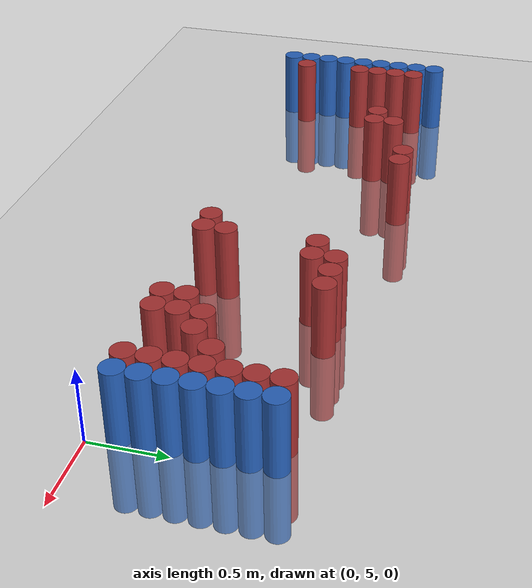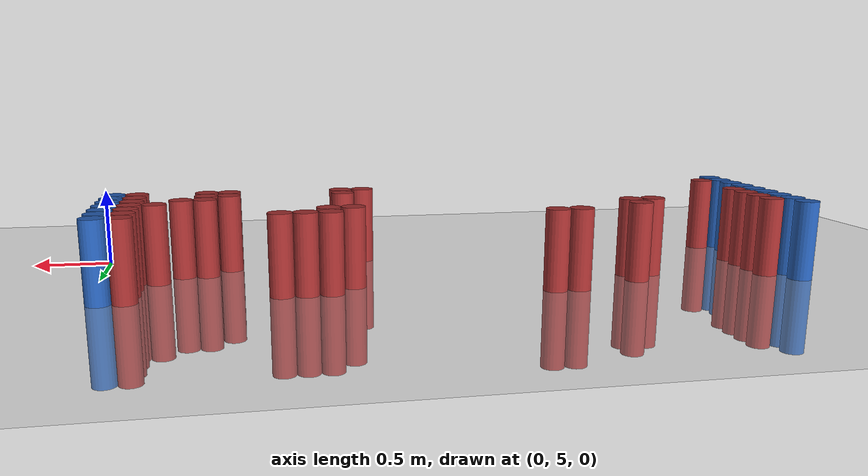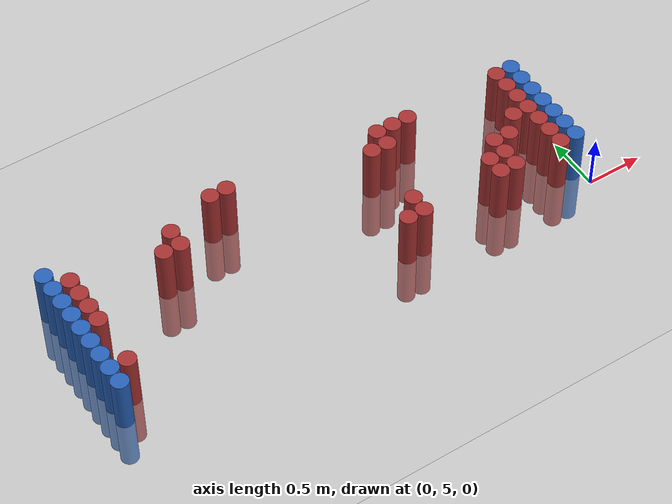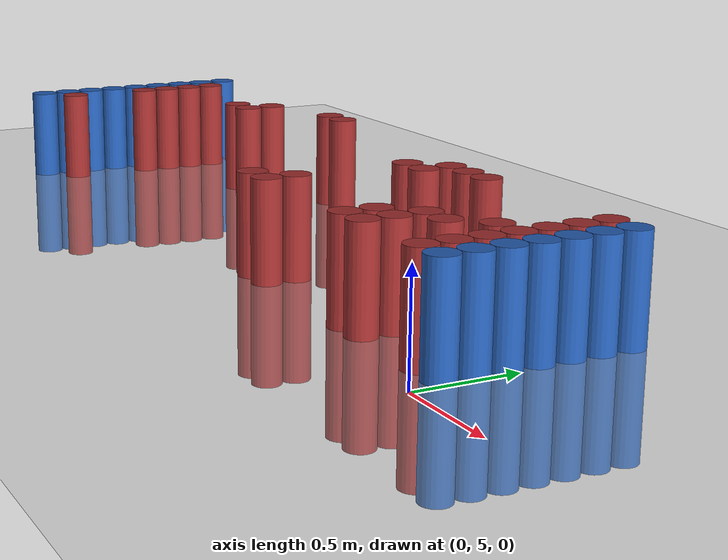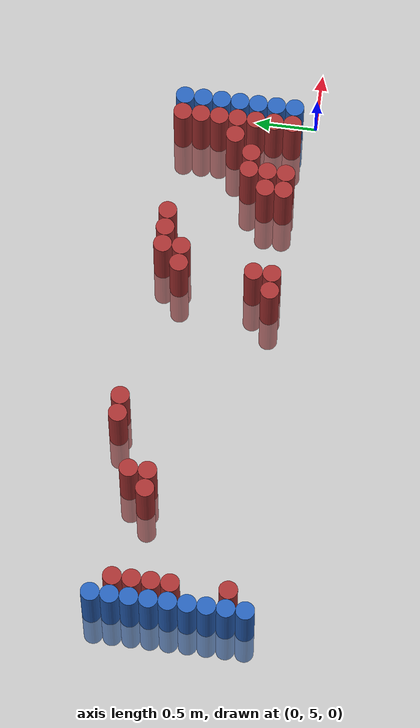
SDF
<sdf version="1.6">
 <world name="default">
  <model name="ground_plane">
   <static>1</static>
   <link name="link">
    <collision name="collision">
     <geometry><plane><normal>0 0 1</normal><size>100 100</size></plane></geometry>
     <surface><friction><ode><mu>100</mu><mu2>50</mu2></ode></friction></surface>
    </collision>
    <visual name="visual">
     <cast_shadows>0</cast_shadows>
     <geometry><plane><normal>0 0 1</normal><size>100 100</size></plane></geometry>
     <material>
      <script><uri>file://media/materials/scripts/gazebo.material</uri><name>Gazebo/Grey</name></script>
     </material>
    </visual>
   </link>
  </model>
  <model name="unit_cylinder_95">
   <static>1</static>
   <pose>-4.425000 5.025000 0.000000 0.000000 0.000000 0.000000</pose>
   <link name="link">
    <inertial>
     <mass>1</mass>
     <inertia><ixx>0.145833</ixx><ixy>0</ixy><ixz>0</ixz><iyy>0.145833</iyy><iyz>0</iyz><izz>0.125</izz></inertia>
    </inertial>
    <collision name="collision">
     <geometry><cylinder><radius>0.075000</radius><length>1</length></cylinder></geometry>
    </collision>
    <visual name="visual">
     <geometry><cylinder><radius>0.075000</radius><length>1</length></cylinder></geometry>
     <material>
      <ambient>0.152000 0.379000 0.720000 1</ambient>
      <diffuse>0.152000 0.379000 0.720000 1</diffuse>
     </material>
     <material>
      <script><name>Gazebo/Grey</name><uri>file://media/materials/scripts/gazebo.material</uri></script>
     </material>
    </visual>
   </link>
  </model>
  <model name="unit_cylinder_96">
   <static>1</static>
   <pose>-4.425000 5.175000 0.000000 0.000000 0.000000 0.000000</pose>
   <link name="link">
    <inertial>
     <mass>1</mass>
     <inertia><ixx>0.145833</ixx><ixy>0</ixy><ixz>0</ixz><iyy>0.145833</iyy><iyz>0</iyz><izz>0.125</izz></inertia>
    </inertial>
    <collision name="collision">
     <geometry><cylinder><radius>0.075000</radius><length>1</length></cylinder></geometry>
    </collision>
    <visual name="visual">
     <geometry><cylinder><radius>0.075000</radius><length>1</length></cylinder></geometry>
     <material>
      <ambient>0.152000 0.379000 0.720000 1</ambient>
      <diffuse>0.152000 0.379000 0.720000 1</diffuse>
     </material>
     <material>
      <script><name>Gazebo/Grey</name><uri>file://media/materials/scripts/gazebo.material</uri></script>
     </material>
    </visual>
   </link>
  </model>
  <model name="unit_cylinder_97">
   <static>1</static>
   <pose>-4.425000 5.325000 0.000000 0.000000 0.000000 0.000000</pose>
   <link name="link">
    <inertial>
     <mass>1</mass>
     <inertia><ixx>0.145833</ixx><ixy>0</ixy><ixz>0</ixz><iyy>0.145833</iyy><iyz>0</iyz><izz>0.125</izz></inertia>
    </inertial>
    <collision name="collision">
     <geometry><cylinder><radius>0.075000</radius><length>1</length></cylinder></geometry>
    </collision>
    <visual name="visual">
     <geometry><cylinder><radius>0.075000</radius><length>1</length></cylinder></geometry>
     <material>
      <ambient>0.152000 0.379000 0.720000 1</ambient>
      <diffuse>0.152000 0.379000 0.720000 1</diffuse>
     </material>
     <material>
      <script><name>Gazebo/Grey</name><uri>file://media/materials/scripts/gazebo.material</uri></script>
     </material>
    </visual>
   </link>
  </model>
  <model name="unit_cylinder_98">
   <static>1</static>
   <pose>-4.425000 5.475000 0.000000 0.000000 0.000000 0.000000</pose>
   <link name="link">
    <inertial>
     <mass>1</mass>
     <inertia><ixx>0.145833</ixx><ixy>0</ixy><ixz>0</ixz><iyy>0.145833</iyy><iyz>0</iyz><izz>0.125</izz></inertia>
    </inertial>
    <collision name="collision">
     <geometry><cylinder><radius>0.075000</radius><length>1</length></cylinder></geometry>
    </collision>
    <visual name="visual">
     <geometry><cylinder><radius>0.075000</radius><length>1</length></cylinder></geometry>
     <material>
      <ambient>0.152000 0.379000 0.720000 1</ambient>
      <diffuse>0.152000 0.379000 0.720000 1</diffuse>
     </material>
     <material>
      <script><name>Gazebo/Grey</name><uri>file://media/materials/scripts/gazebo.material</uri></script>
     </material>
    </visual>
   </link>
  </model>
  <model name="unit_cylinder_99">
   <static>1</static>
   <pose>-4.425000 5.625000 0.000000 0.000000 0.000000 0.000000</pose>
   <link name="link">
    <inertial>
     <mass>1</mass>
     <inertia><ixx>0.145833</ixx><ixy>0</ixy><ixz>0</ixz><iyy>0.145833</iyy><iyz>0</iyz><izz>0.125</izz></inertia>
    </inertial>
    <collision name="collision">
     <geometry><cylinder><radius>0.075000</radius><length>1</length></cylinder></geometry>
    </collision>
    <visual name="visual">
     <geometry><cylinder><radius>0.075000</radius><length>1</length></cylinder></geometry>
     <material>
      <ambient>0.152000 0.379000 0.720000 1</ambient>
      <diffuse>0.152000 0.379000 0.720000 1</diffuse>
     </material>
     <material>
      <script><name>Gazebo/Grey</name><uri>file://media/materials/scripts/gazebo.material</uri></script>
     </material>
    </visual>
   </link>
  </model>
  <model name="unit_cylinder_100">
   <static>1</static>
   <pose>-4.425000 5.775000 0.000000 0.000000 0.000000 0.000000</pose>
   <link name="link">
    <inertial>
     <mass>1</mass>
     <inertia><ixx>0.145833</ixx><ixy>0</ixy><ixz>0</ixz><iyy>0.145833</iyy><iyz>0</iyz><izz>0.125</izz></inertia>
    </inertial>
    <collision name="collision">
     <geometry><cylinder><radius>0.075000</radius><length>1</length></cylinder></geometry>
    </collision>
    <visual name="visual">
     <geometry><cylinder><radius>0.075000</radius><length>1</length></cylinder></geometry>
     <material>
      <ambient>0.152000 0.379000 0.720000 1</ambient>
      <diffuse>0.152000 0.379000 0.720000 1</diffuse>
     </material>
     <material>
      <script><name>Gazebo/Grey</name><uri>file://media/materials/scripts/gazebo.material</uri></script>
     </material>
    </visual>
   </link>
  </model>
  <model name="unit_cylinder_101">
   <static>1</static>
   <pose>-4.425000 5.925000 0.000000 0.000000 0.000000 0.000000</pose>
   <link name="link">
    <inertial>
     <mass>1</mass>
     <inertia><ixx>0.145833</ixx><ixy>0</ixy><ixz>0</ixz><iyy>0.145833</iyy><iyz>0</iyz><izz>0.125</izz></inertia>
    </inertial>
    <collision name="collision">
     <geometry><cylinder><radius>0.075000</radius><length>1</length></cylinder></geometry>
    </collision>
    <visual name="visual">
     <geometry><cylinder><radius>0.075000</radius><length>1</length></cylinder></geometry>
     <material>
      <ambient>0.152000 0.379000 0.720000 1</ambient>
      <diffuse>0.152000 0.379000 0.720000 1</diffuse>
     </material>
     <material>
      <script><name>Gazebo/Grey</name><uri>file://media/materials/scripts/gazebo.material</uri></script>
     </material>
    </visual>
   </link>
  </model>
  <model name="unit_cylinder_102">
   <static>1</static>
   <pose>-4.425000 6.075000 0.000000 0.000000 0.000000 0.000000</pose>
   <link name="link">
    <inertial>
     <mass>1</mass>
     <inertia><ixx>0.145833</ixx><ixy>0</ixy><ixz>0</ixz><iyy>0.145833</iyy><iyz>0</iyz><izz>0.125</izz></inertia>
    </inertial>
    <collision name="collision">
     <geometry><cylinder><radius>0.075000</radius><length>1</length></cylinder></geometry>
    </collision>
    <visual name="visual">
     <geometry><cylinder><radius>0.075000</radius><length>1</length></cylinder></geometry>
     <material>
      <ambient>0.152000 0.379000 0.720000 1</ambient>
      <diffuse>0.152000 0.379000 0.720000 1</diffuse>
     </material>
     <material>
      <script><name>Gazebo/Grey</name><uri>file://media/materials/scripts/gazebo.material</uri></script>
     </material>
    </visual>
   </link>
  </model>
  <model name="unit_cylinder_103">
   <static>1</static>
   <pose>-4.425000 6.225000 0.000000 0.000000 0.000000 0.000000</pose>
   <link name="link">
    <inertial>
     <mass>1</mass>
     <inertia><ixx>0.145833</ixx><ixy>0</ixy><ixz>0</ixz><iyy>0.145833</iyy><iyz>0</iyz><izz>0.125</izz></inertia>
    </inertial>
    <collision name="collision">
     <geometry><cylinder><radius>0.075000</radius><length>1</length></cylinder></geometry>
    </collision>
    <visual name="visual">
     <geometry><cylinder><radius>0.075000</radius><length>1</length></cylinder></geometry>
     <material>
      <ambient>0.152000 0.379000 0.720000 1</ambient>
      <diffuse>0.152000 0.379000 0.720000 1</diffuse>
     </material>
     <material>
      <script><name>Gazebo/Grey</name><uri>file://media/materials/scripts/gazebo.material</uri></script>
     </material>
    </visual>
   </link>
  </model>
  <model name="unit_cylinder_126">
   <static>1</static>
   <pose>-4.275000 5.175000 0.000000 0.000000 0.000000 0.000000</pose>
   <link name="link">
    <inertial>
     <mass>1</mass>
     <inertia><ixx>0.145833</ixx><ixy>0</ixy><ixz>0</ixz><iyy>0.145833</iyy><iyz>0</iyz><izz>0.125</izz></inertia>
    </inertial>
    <collision name="collision">
     <geometry><cylinder><radius>0.075000</radius><length>1</length></cylinder></geometry>
    </collision>
    <visual name="visual">
     <geometry><cylinder><radius>0.075000</radius><length>1</length></cylinder></geometry>
     <material>
      <ambient>0.648000 0.192000 0.192000 1</ambient>
      <diffuse>0.648000 0.192000 0.192000 1</diffuse>
     </material>
     <material>
      <script><name>Gazebo/Grey</name><uri>file://media/materials/scripts/gazebo.material</uri></script>
     </material>
    </visual>
   </link>
  </model>
  <model name="unit_cylinder_127">
   <static>1</static>
   <pose>-4.275000 5.625000 0.000000 0.000000 0.000000 0.000000</pose>
   <link name="link">
    <inertial>
     <mass>1</mass>
     <inertia><ixx>0.145833</ixx><ixy>0</ixy><ixz>0</ixz><iyy>0.145833</iyy><iyz>0</iyz><izz>0.125</izz></inertia>
    </inertial>
    <collision name="collision">
     <geometry><cylinder><radius>0.075000</radius><length>1</length></cylinder></geometry>
    </collision>
    <visual name="visual">
     <geometry><cylinder><radius>0.075000</radius><length>1</length></cylinder></geometry>
     <material>
      <ambient>0.648000 0.192000 0.192000 1</ambient>
      <diffuse>0.648000 0.192000 0.192000 1</diffuse>
     </material>
     <material>
      <script><name>Gazebo/Grey</name><uri>file://media/materials/scripts/gazebo.material</uri></script>
     </material>
    </visual>
   </link>
  </model>
  <model name="unit_cylinder_128">
   <static>1</static>
   <pose>-4.275000 5.775000 0.000000 0.000000 0.000000 0.000000</pose>
   <link name="link">
    <inertial>
     <mass>1</mass>
     <inertia><ixx>0.145833</ixx><ixy>0</ixy><ixz>0</ixz><iyy>0.145833</iyy><iyz>0</iyz><izz>0.125</izz></inertia>
    </inertial>
    <collision name="collision">
     <geometry><cylinder><radius>0.075000</radius><length>1</length></cylinder></geometry>
    </collision>
    <visual name="visual">
     <geometry><cylinder><radius>0.075000</radius><length>1</length></cylinder></geometry>
     <material>
      <ambient>0.648000 0.192000 0.192000 1</ambient>
      <diffuse>0.648000 0.192000 0.192000 1</diffuse>
     </material>
     <material>
      <script><name>Gazebo/Grey</name><uri>file://media/materials/scripts/gazebo.material</uri></script>
     </material>
    </visual>
   </link>
  </model>
  <model name="unit_cylinder_129">
   <static>1</static>
   <pose>-4.275000 5.925000 0.000000 0.000000 0.000000 0.000000</pose>
   <link name="link">
    <inertial>
     <mass>1</mass>
     <inertia><ixx>0.145833</ixx><ixy>0</ixy><ixz>0</ixz><iyy>0.145833</iyy><iyz>0</iyz><izz>0.125</izz></inertia>
    </inertial>
    <collision name="collision">
     <geometry><cylinder><radius>0.075000</radius><length>1</length></cylinder></geometry>
    </collision>
    <visual name="visual">
     <geometry><cylinder><radius>0.075000</radius><length>1</length></cylinder></geometry>
     <material>
      <ambient>0.648000 0.192000 0.192000 1</ambient>
      <diffuse>0.648000 0.192000 0.192000 1</diffuse>
     </material>
     <material>
      <script><name>Gazebo/Grey</name><uri>file://media/materials/scripts/gazebo.material</uri></script>
     </material>
    </visual>
   </link>
  </model>
  <model name="unit_cylinder_130">
   <static>1</static>
   <pose>-4.275000 6.075000 0.000000 0.000000 0.000000 0.000000</pose>
   <link name="link">
    <inertial>
     <mass>1</mass>
     <inertia><ixx>0.145833</ixx><ixy>0</ixy><ixz>0</ixz><iyy>0.145833</iyy><iyz>0</iyz><izz>0.125</izz></inertia>
    </inertial>
    <collision name="collision">
     <geometry><cylinder><radius>0.075000</radius><length>1</length></cylinder></geometry>
    </collision>
    <visual name="visual">
     <geometry><cylinder><radius>0.075000</radius><length>1</length></cylinder></geometry>
     <material>
      <ambient>0.648000 0.192000 0.192000 1</ambient>
      <diffuse>0.648000 0.192000 0.192000 1</diffuse>
     </material>
     <material>
      <script><name>Gazebo/Grey</name><uri>file://media/materials/scripts/gazebo.material</uri></script>
     </material>
    </visual>
   </link>
  </model>
  <model name="unit_cylinder_154">
   <static>1</static>
   <pose>-3.525000 5.925000 0.000000 0.000000 0.000000 0.000000</pose>
   <link name="link">
    <inertial>
     <mass>1</mass>
     <inertia><ixx>0.145833</ixx><ixy>0</ixy><ixz>0</ixz><iyy>0.145833</iyy><iyz>0</iyz><izz>0.125</izz></inertia>
    </inertial>
    <collision name="collision">
     <geometry><cylinder><radius>0.075000</radius><length>1</length></cylinder></geometry>
    </collision>
    <visual name="visual">
     <geometry><cylinder><radius>0.075000</radius><length>1</length></cylinder></geometry>
     <material>
      <ambient>0.648000 0.192000 0.192000 1</ambient>
      <diffuse>0.648000 0.192000 0.192000 1</diffuse>
     </material>
     <material>
      <script><name>Gazebo/Grey</name><uri>file://media/materials/scripts/gazebo.material</uri></script>
     </material>
    </visual>
   </link>
  </model>
  <model name="unit_cylinder_157">
   <static>1</static>
   <pose>-3.375000 5.925000 0.000000 0.000000 0.000000 0.000000</pose>
   <link name="link">
    <inertial>
     <mass>1</mass>
     <inertia><ixx>0.145833</ixx><ixy>0</ixy><ixz>0</ixz><iyy>0.145833</iyy><iyz>0</iyz><izz>0.125</izz></inertia>
    </inertial>
    <collision name="collision">
     <geometry><cylinder><radius>0.075000</radius><length>1</length></cylinder></geometry>
    </collision>
    <visual name="visual">
     <geometry><cylinder><radius>0.075000</radius><length>1</length></cylinder></geometry>
     <material>
      <ambient>0.648000 0.192000 0.192000 1</ambient>
      <diffuse>0.648000 0.192000 0.192000 1</diffuse>
     </material>
     <material>
      <script><name>Gazebo/Grey</name><uri>file://media/materials/scripts/gazebo.material</uri></script>
     </material>
    </visual>
   </link>
  </model>
  <model name="unit_cylinder_158">
   <static>1</static>
   <pose>-3.375000 6.075000 0.000000 0.000000 0.000000 0.000000</pose>
   <link name="link">
    <inertial>
     <mass>1</mass>
     <inertia><ixx>0.145833</ixx><ixy>0</ixy><ixz>0</ixz><iyy>0.145833</iyy><iyz>0</iyz><izz>0.125</izz></inertia>
    </inertial>
    <collision name="collision">
     <geometry><cylinder><radius>0.075000</radius><length>1</length></cylinder></geometry>
    </collision>
    <visual name="visual">
     <geometry><cylinder><radius>0.075000</radius><length>1</length></cylinder></geometry>
     <material>
      <ambient>0.648000 0.192000 0.192000 1</ambient>
      <diffuse>0.648000 0.192000 0.192000 1</diffuse>
     </material>
     <material>
      <script><name>Gazebo/Grey</name><uri>file://media/materials/scripts/gazebo.material</uri></script>
     </material>
    </visual>
   </link>
  </model>
  <model name="unit_cylinder_159">
   <static>1</static>
   <pose>-2.925000 6.225000 0.000000 0.000000 0.000000 0.000000</pose>
   <link name="link">
    <inertial>
     <mass>1</mass>
     <inertia><ixx>0.145833</ixx><ixy>0</ixy><ixz>0</ixz><iyy>0.145833</iyy><iyz>0</iyz><izz>0.125</izz></inertia>
    </inertial>
    <collision name="collision">
     <geometry><cylinder><radius>0.075000</radius><length>1</length></cylinder></geometry>
    </collision>
    <visual name="visual">
     <geometry><cylinder><radius>0.075000</radius><length>1</length></cylinder></geometry>
     <material>
      <ambient>0.648000 0.192000 0.192000 1</ambient>
      <diffuse>0.648000 0.192000 0.192000 1</diffuse>
     </material>
     <material>
      <script><name>Gazebo/Grey</name><uri>file://media/materials/scripts/gazebo.material</uri></script>
     </material>
    </visual>
   </link>
  </model>
  <model name="unit_cylinder_162">
   <static>1</static>
   <pose>-2.775000 6.225000 0.000000 0.000000 0.000000 0.000000</pose>
   <link name="link">
    <inertial>
     <mass>1</mass>
     <inertia><ixx>0.145833</ixx><ixy>0</ixy><ixz>0</ixz><iyy>0.145833</iyy><iyz>0</iyz><izz>0.125</izz></inertia>
    </inertial>
    <collision name="collision">
     <geometry><cylinder><radius>0.075000</radius><length>1</length></cylinder></geometry>
    </collision>
    <visual name="visual">
     <geometry><cylinder><radius>0.075000</radius><length>1</length></cylinder></geometry>
     <material>
      <ambient>0.648000 0.192000 0.192000 1</ambient>
      <diffuse>0.648000 0.192000 0.192000 1</diffuse>
     </material>
     <material>
      <script><name>Gazebo/Grey</name><uri>file://media/materials/scripts/gazebo.material</uri></script>
     </material>
    </visual>
   </link>
  </model>
  <model name="unit_cylinder_173">
   <static>1</static>
   <pose>-1.725000 5.175000 0.000000 0.000000 0.000000 0.000000</pose>
   <link name="link">
    <inertial>
     <mass>1</mass>
     <inertia><ixx>0.145833</ixx><ixy>0</ixy><ixz>0</ixz><iyy>0.145833</iyy><iyz>0</iyz><izz>0.125</izz></inertia>
    </inertial>
    <collision name="collision">
     <geometry><cylinder><radius>0.075000</radius><length>1</length></cylinder></geometry>
    </collision>
    <visual name="visual">
     <geometry><cylinder><radius>0.075000</radius><length>1</length></cylinder></geometry>
     <material>
      <ambient>0.648000 0.192000 0.192000 1</ambient>
      <diffuse>0.648000 0.192000 0.192000 1</diffuse>
     </material>
     <material>
      <script><name>Gazebo/Grey</name><uri>file://media/materials/scripts/gazebo.material</uri></script>
     </material>
    </visual>
   </link>
  </model>
  <model name="unit_cylinder_174">
   <static>1</static>
   <pose>-1.575000 5.175000 0.000000 0.000000 0.000000 0.000000</pose>
   <link name="link">
    <inertial>
     <mass>1</mass>
     <inertia><ixx>0.145833</ixx><ixy>0</ixy><ixz>0</ixz><iyy>0.145833</iyy><iyz>0</iyz><izz>0.125</izz></inertia>
    </inertial>
    <collision name="collision">
     <geometry><cylinder><radius>0.075000</radius><length>1</length></cylinder></geometry>
    </collision>
    <visual name="visual">
     <geometry><cylinder><radius>0.075000</radius><length>1</length></cylinder></geometry>
     <material>
      <ambient>0.648000 0.192000 0.192000 1</ambient>
      <diffuse>0.648000 0.192000 0.192000 1</diffuse>
     </material>
     <material>
      <script><name>Gazebo/Grey</name><uri>file://media/materials/scripts/gazebo.material</uri></script>
     </material>
    </visual>
   </link>
  </model>
  <model name="unit_cylinder_175">
   <static>1</static>
   <pose>-1.575000 5.325000 0.000000 0.000000 0.000000 0.000000</pose>
   <link name="link">
    <inertial>
     <mass>1</mass>
     <inertia><ixx>0.145833</ixx><ixy>0</ixy><ixz>0</ixz><iyy>0.145833</iyy><iyz>0</iyz><izz>0.125</izz></inertia>
    </inertial>
    <collision name="collision">
     <geometry><cylinder><radius>0.075000</radius><length>1</length></cylinder></geometry>
    </collision>
    <visual name="visual">
     <geometry><cylinder><radius>0.075000</radius><length>1</length></cylinder></geometry>
     <material>
      <ambient>0.648000 0.192000 0.192000 1</ambient>
      <diffuse>0.648000 0.192000 0.192000 1</diffuse>
     </material>
     <material>
      <script><name>Gazebo/Grey</name><uri>file://media/materials/scripts/gazebo.material</uri></script>
     </material>
    </visual>
   </link>
  </model>
  <model name="unit_cylinder_176">
   <static>1</static>
   <pose>-1.575000 5.925000 0.000000 0.000000 0.000000 0.000000</pose>
   <link name="link">
    <inertial>
     <mass>1</mass>
     <inertia><ixx>0.145833</ixx><ixy>0</ixy><ixz>0</ixz><iyy>0.145833</iyy><iyz>0</iyz><izz>0.125</izz></inertia>
    </inertial>
    <collision name="collision">
     <geometry><cylinder><radius>0.075000</radius><length>1</length></cylinder></geometry>
    </collision>
    <visual name="visual">
     <geometry><cylinder><radius>0.075000</radius><length>1</length></cylinder></geometry>
     <material>
      <ambient>0.648000 0.192000 0.192000 1</ambient>
      <diffuse>0.648000 0.192000 0.192000 1</diffuse>
     </material>
     <material>
      <script><name>Gazebo/Grey</name><uri>file://media/materials/scripts/gazebo.material</uri></script>
     </material>
    </visual>
   </link>
  </model>
  <model name="unit_cylinder_177">
   <static>1</static>
   <pose>-1.425000 5.925000 0.000000 0.000000 0.000000 0.000000</pose>
   <link name="link">
    <inertial>
     <mass>1</mass>
     <inertia><ixx>0.145833</ixx><ixy>0</ixy><ixz>0</ixz><iyy>0.145833</iyy><iyz>0</iyz><izz>0.125</izz></inertia>
    </inertial>
    <collision name="collision">
     <geometry><cylinder><radius>0.075000</radius><length>1</length></cylinder></geometry>
    </collision>
    <visual name="visual">
     <geometry><cylinder><radius>0.075000</radius><length>1</length></cylinder></geometry>
     <material>
      <ambient>0.648000 0.192000 0.192000 1</ambient>
      <diffuse>0.648000 0.192000 0.192000 1</diffuse>
     </material>
     <material>
      <script><name>Gazebo/Grey</name><uri>file://media/materials/scripts/gazebo.material</uri></script>
     </material>
    </visual>
   </link>
  </model>
  <model name="unit_cylinder_178">
   <static>1</static>
   <pose>-1.425000 6.075000 0.000000 0.000000 0.000000 0.000000</pose>
   <link name="link">
    <inertial>
     <mass>1</mass>
     <inertia><ixx>0.145833</ixx><ixy>0</ixy><ixz>0</ixz><iyy>0.145833</iyy><iyz>0</iyz><izz>0.125</izz></inertia>
    </inertial>
    <collision name="collision">
     <geometry><cylinder><radius>0.075000</radius><length>1</length></cylinder></geometry>
    </collision>
    <visual name="visual">
     <geometry><cylinder><radius>0.075000</radius><length>1</length></cylinder></geometry>
     <material>
      <ambient>0.648000 0.192000 0.192000 1</ambient>
      <diffuse>0.648000 0.192000 0.192000 1</diffuse>
     </material>
     <material>
      <script><name>Gazebo/Grey</name><uri>file://media/materials/scripts/gazebo.material</uri></script>
     </material>
    </visual>
   </link>
  </model>
  <model name="unit_cylinder_180">
   <static>1</static>
   <pose>-1.275000 6.075000 0.000000 0.000000 0.000000 0.000000</pose>
   <link name="link">
    <inertial>
     <mass>1</mass>
     <inertia><ixx>0.145833</ixx><ixy>0</ixy><ixz>0</ixz><iyy>0.145833</iyy><iyz>0</iyz><izz>0.125</izz></inertia>
    </inertial>
    <collision name="collision">
     <geometry><cylinder><radius>0.075000</radius><length>1</length></cylinder></geometry>
    </collision>
    <visual name="visual">
     <geometry><cylinder><radius>0.075000</radius><length>1</length></cylinder></geometry>
     <material>
      <ambient>0.648000 0.192000 0.192000 1</ambient>
      <diffuse>0.648000 0.192000 0.192000 1</diffuse>
     </material>
     <material>
      <script><name>Gazebo/Grey</name><uri>file://media/materials/scripts/gazebo.material</uri></script>
     </material>
    </visual>
   </link>
  </model>
  <model name="unit_cylinder_183">
   <static>1</static>
   <pose>-1.125000 6.075000 0.000000 0.000000 0.000000 0.000000</pose>
   <link name="link">
    <inertial>
     <mass>1</mass>
     <inertia><ixx>0.145833</ixx><ixy>0</ixy><ixz>0</ixz><iyy>0.145833</iyy><iyz>0</iyz><izz>0.125</izz></inertia>
    </inertial>
    <collision name="collision">
     <geometry><cylinder><radius>0.075000</radius><length>1</length></cylinder></geometry>
    </collision>
    <visual name="visual">
     <geometry><cylinder><radius>0.075000</radius><length>1</length></cylinder></geometry>
     <material>
      <ambient>0.648000 0.192000 0.192000 1</ambient>
      <diffuse>0.648000 0.192000 0.192000 1</diffuse>
     </material>
     <material>
      <script><name>Gazebo/Grey</name><uri>file://media/materials/scripts/gazebo.material</uri></script>
     </material>
    </visual>
   </link>
  </model>
  <model name="unit_cylinder_186">
   <static>1</static>
   <pose>-0.825000 5.175000 0.000000 0.000000 0.000000 0.000000</pose>
   <link name="link">
    <inertial>
     <mass>1</mass>
     <inertia><ixx>0.145833</ixx><ixy>0</ixy><ixz>0</ixz><iyy>0.145833</iyy><iyz>0</iyz><izz>0.125</izz></inertia>
    </inertial>
    <collision name="collision">
     <geometry><cylinder><radius>0.075000</radius><length>1</length></cylinder></geometry>
    </collision>
    <visual name="visual">
     <geometry><cylinder><radius>0.075000</radius><length>1</length></cylinder></geometry>
     <material>
      <ambient>0.648000 0.192000 0.192000 1</ambient>
      <diffuse>0.648000 0.192000 0.192000 1</diffuse>
     </material>
     <material>
      <script><name>Gazebo/Grey</name><uri>file://media/materials/scripts/gazebo.material</uri></script>
     </material>
    </visual>
   </link>
  </model>
  <model name="unit_cylinder_187">
   <static>1</static>
   <pose>-0.825000 5.325000 0.000000 0.000000 0.000000 0.000000</pose>
   <link name="link">
    <inertial>
     <mass>1</mass>
     <inertia><ixx>0.145833</ixx><ixy>0</ixy><ixz>0</ixz><iyy>0.145833</iyy><iyz>0</iyz><izz>0.125</izz></inertia>
    </inertial>
    <collision name="collision">
     <geometry><cylinder><radius>0.075000</radius><length>1</length></cylinder></geometry>
    </collision>
    <visual name="visual">
     <geometry><cylinder><radius>0.075000</radius><length>1</length></cylinder></geometry>
     <material>
      <ambient>0.648000 0.192000 0.192000 1</ambient>
      <diffuse>0.648000 0.192000 0.192000 1</diffuse>
     </material>
     <material>
      <script><name>Gazebo/Grey</name><uri>file://media/materials/scripts/gazebo.material</uri></script>
     </material>
    </visual>
   </link>
  </model>
  <model name="unit_cylinder_188">
   <static>1</static>
   <pose>-0.675000 5.175000 0.000000 0.000000 0.000000 0.000000</pose>
   <link name="link">
    <inertial>
     <mass>1</mass>
     <inertia><ixx>0.145833</ixx><ixy>0</ixy><ixz>0</ixz><iyy>0.145833</iyy><iyz>0</iyz><izz>0.125</izz></inertia>
    </inertial>
    <collision name="collision">
     <geometry><cylinder><radius>0.075000</radius><length>1</length></cylinder></geometry>
    </collision>
    <visual name="visual">
     <geometry><cylinder><radius>0.075000</radius><length>1</length></cylinder></geometry>
     <material>
      <ambient>0.648000 0.192000 0.192000 1</ambient>
      <diffuse>0.648000 0.192000 0.192000 1</diffuse>
     </material>
     <material>
      <script><name>Gazebo/Grey</name><uri>file://media/materials/scripts/gazebo.material</uri></script>
     </material>
    </visual>
   </link>
  </model>
  <model name="unit_cylinder_189">
   <static>1</static>
   <pose>-0.675000 5.325000 0.000000 0.000000 0.000000 0.000000</pose>
   <link name="link">
    <inertial>
     <mass>1</mass>
     <inertia><ixx>0.145833</ixx><ixy>0</ixy><ixz>0</ixz><iyy>0.145833</iyy><iyz>0</iyz><izz>0.125</izz></inertia>
    </inertial>
    <collision name="collision">
     <geometry><cylinder><radius>0.075000</radius><length>1</length></cylinder></geometry>
    </collision>
    <visual name="visual">
     <geometry><cylinder><radius>0.075000</radius><length>1</length></cylinder></geometry>
     <material>
      <ambient>0.648000 0.192000 0.192000 1</ambient>
      <diffuse>0.648000 0.192000 0.192000 1</diffuse>
     </material>
     <material>
      <script><name>Gazebo/Grey</name><uri>file://media/materials/scripts/gazebo.material</uri></script>
     </material>
    </visual>
   </link>
  </model>
  <model name="unit_cylinder_190">
   <static>1</static>
   <pose>-0.675000 5.475000 0.000000 0.000000 0.000000 0.000000</pose>
   <link name="link">
    <inertial>
     <mass>1</mass>
     <inertia><ixx>0.145833</ixx><ixy>0</ixy><ixz>0</ixz><iyy>0.145833</iyy><iyz>0</iyz><izz>0.125</izz></inertia>
    </inertial>
    <collision name="collision">
     <geometry><cylinder><radius>0.075000</radius><length>1</length></cylinder></geometry>
    </collision>
    <visual name="visual">
     <geometry><cylinder><radius>0.075000</radius><length>1</length></cylinder></geometry>
     <material>
      <ambient>0.648000 0.192000 0.192000 1</ambient>
      <diffuse>0.648000 0.192000 0.192000 1</diffuse>
     </material>
     <material>
      <script><name>Gazebo/Grey</name><uri>file://media/materials/scripts/gazebo.material</uri></script>
     </material>
    </visual>
   </link>
  </model>
  <model name="unit_cylinder_191">
   <static>1</static>
   <pose>-0.525000 5.475000 0.000000 0.000000 0.000000 0.000000</pose>
   <link name="link">
    <inertial>
     <mass>1</mass>
     <inertia><ixx>0.145833</ixx><ixy>0</ixy><ixz>0</ixz><iyy>0.145833</iyy><iyz>0</iyz><izz>0.125</izz></inertia>
    </inertial>
    <collision name="collision">
     <geometry><cylinder><radius>0.075000</radius><length>1</length></cylinder></geometry>
    </collision>
    <visual name="visual">
     <geometry><cylinder><radius>0.075000</radius><length>1</length></cylinder></geometry>
     <material>
      <ambient>0.648000 0.192000 0.192000 1</ambient>
      <diffuse>0.648000 0.192000 0.192000 1</diffuse>
     </material>
     <material>
      <script><name>Gazebo/Grey</name><uri>file://media/materials/scripts/gazebo.material</uri></script>
     </material>
    </visual>
   </link>
  </model>
  <model name="unit_cylinder_192">
   <static>1</static>
   <pose>-0.375000 5.625000 0.000000 0.000000 0.000000 0.000000</pose>
   <link name="link">
    <inertial>
     <mass>1</mass>
     <inertia><ixx>0.145833</ixx><ixy>0</ixy><ixz>0</ixz><iyy>0.145833</iyy><iyz>0</iyz><izz>0.125</izz></inertia>
    </inertial>
    <collision name="collision">
     <geometry><cylinder><radius>0.075000</radius><length>1</length></cylinder></geometry>
    </collision>
    <visual name="visual">
     <geometry><cylinder><radius>0.075000</radius><length>1</length></cylinder></geometry>
     <material>
      <ambient>0.648000 0.192000 0.192000 1</ambient>
      <diffuse>0.648000 0.192000 0.192000 1</diffuse>
     </material>
     <material>
      <script><name>Gazebo/Grey</name><uri>file://media/materials/scripts/gazebo.material</uri></script>
     </material>
    </visual>
   </link>
  </model>
  <model name="unit_cylinder_195">
   <static>1</static>
   <pose>-0.225000 5.175000 0.000000 0.000000 0.000000 0.000000</pose>
   <link name="link">
    <inertial>
     <mass>1</mass>
     <inertia><ixx>0.145833</ixx><ixy>0</ixy><ixz>0</ixz><iyy>0.145833</iyy><iyz>0</iyz><izz>0.125</izz></inertia>
    </inertial>
    <collision name="collision">
     <geometry><cylinder><radius>0.075000</radius><length>1</length></cylinder></geometry>
    </collision>
    <visual name="visual">
     <geometry><cylinder><radius>0.075000</radius><length>1</length></cylinder></geometry>
     <material>
      <ambient>0.648000 0.192000 0.192000 1</ambient>
      <diffuse>0.648000 0.192000 0.192000 1</diffuse>
     </material>
     <material>
      <script><name>Gazebo/Grey</name><uri>file://media/materials/scripts/gazebo.material</uri></script>
     </material>
    </visual>
   </link>
  </model>
  <model name="unit_cylinder_196">
   <static>1</static>
   <pose>-0.225000 5.325000 0.000000 0.000000 0.000000 0.000000</pose>
   <link name="link">
    <inertial>
     <mass>1</mass>
     <inertia><ixx>0.145833</ixx><ixy>0</ixy><ixz>0</ixz><iyy>0.145833</iyy><iyz>0</iyz><izz>0.125</izz></inertia>
    </inertial>
    <collision name="collision">
     <geometry><cylinder><radius>0.075000</radius><length>1</length></cylinder></geometry>
    </collision>
    <visual name="visual">
     <geometry><cylinder><radius>0.075000</radius><length>1</length></cylinder></geometry>
     <material>
      <ambient>0.648000 0.192000 0.192000 1</ambient>
      <diffuse>0.648000 0.192000 0.192000 1</diffuse>
     </material>
     <material>
      <script><name>Gazebo/Grey</name><uri>file://media/materials/scripts/gazebo.material</uri></script>
     </material>
    </visual>
   </link>
  </model>
  <model name="unit_cylinder_197">
   <static>1</static>
   <pose>-0.225000 5.475000 0.000000 0.000000 0.000000 0.000000</pose>
   <link name="link">
    <inertial>
     <mass>1</mass>
     <inertia><ixx>0.145833</ixx><ixy>0</ixy><ixz>0</ixz><iyy>0.145833</iyy><iyz>0</iyz><izz>0.125</izz></inertia>
    </inertial>
    <collision name="collision">
     <geometry><cylinder><radius>0.075000</radius><length>1</length></cylinder></geometry>
    </collision>
    <visual name="visual">
     <geometry><cylinder><radius>0.075000</radius><length>1</length></cylinder></geometry>
     <material>
      <ambient>0.648000 0.192000 0.192000 1</ambient>
      <diffuse>0.648000 0.192000 0.192000 1</diffuse>
     </material>
     <material>
      <script><name>Gazebo/Grey</name><uri>file://media/materials/scripts/gazebo.material</uri></script>
     </material>
    </visual>
   </link>
  </model>
  <model name="unit_cylinder_198">
   <static>1</static>
   <pose>-0.225000 5.625000 0.000000 0.000000 0.000000 0.000000</pose>
   <link name="link">
    <inertial>
     <mass>1</mass>
     <inertia><ixx>0.145833</ixx><ixy>0</ixy><ixz>0</ixz><iyy>0.145833</iyy><iyz>0</iyz><izz>0.125</izz></inertia>
    </inertial>
    <collision name="collision">
     <geometry><cylinder><radius>0.075000</radius><length>1</length></cylinder></geometry>
    </collision>
    <visual name="visual">
     <geometry><cylinder><radius>0.075000</radius><length>1</length></cylinder></geometry>
     <material>
      <ambient>0.648000 0.192000 0.192000 1</ambient>
      <diffuse>0.648000 0.192000 0.192000 1</diffuse>
     </material>
     <material>
      <script><name>Gazebo/Grey</name><uri>file://media/materials/scripts/gazebo.material</uri></script>
     </material>
    </visual>
   </link>
  </model>
  <model name="unit_cylinder_199">
   <static>1</static>
   <pose>-0.225000 5.775000 0.000000 0.000000 0.000000 0.000000</pose>
   <link name="link">
    <inertial>
     <mass>1</mass>
     <inertia><ixx>0.145833</ixx><ixy>0</ixy><ixz>0</ixz><iyy>0.145833</iyy><iyz>0</iyz><izz>0.125</izz></inertia>
    </inertial>
    <collision name="collision">
     <geometry><cylinder><radius>0.075000</radius><length>1</length></cylinder></geometry>
    </collision>
    <visual name="visual">
     <geometry><cylinder><radius>0.075000</radius><length>1</length></cylinder></geometry>
     <material>
      <ambient>0.648000 0.192000 0.192000 1</ambient>
      <diffuse>0.648000 0.192000 0.192000 1</diffuse>
     </material>
     <material>
      <script><name>Gazebo/Grey</name><uri>file://media/materials/scripts/gazebo.material</uri></script>
     </material>
    </visual>
   </link>
  </model>
  <model name="unit_cylinder_200">
   <static>1</static>
   <pose>-0.225000 5.925000 0.000000 0.000000 0.000000 0.000000</pose>
   <link name="link">
    <inertial>
     <mass>1</mass>
     <inertia><ixx>0.145833</ixx><ixy>0</ixy><ixz>0</ixz><iyy>0.145833</iyy><iyz>0</iyz><izz>0.125</izz></inertia>
    </inertial>
    <collision name="collision">
     <geometry><cylinder><radius>0.075000</radius><length>1</length></cylinder></geometry>
    </collision>
    <visual name="visual">
     <geometry><cylinder><radius>0.075000</radius><length>1</length></cylinder></geometry>
     <material>
      <ambient>0.648000 0.192000 0.192000 1</ambient>
      <diffuse>0.648000 0.192000 0.192000 1</diffuse>
     </material>
     <material>
      <script><name>Gazebo/Grey</name><uri>file://media/materials/scripts/gazebo.material</uri></script>
     </material>
    </visual>
   </link>
  </model>
  <model name="unit_cylinder_201">
   <static>1</static>
   <pose>-0.225000 6.075000 0.000000 0.000000 0.000000 0.000000</pose>
   <link name="link">
    <inertial>
     <mass>1</mass>
     <inertia><ixx>0.145833</ixx><ixy>0</ixy><ixz>0</ixz><iyy>0.145833</iyy><iyz>0</iyz><izz>0.125</izz></inertia>
    </inertial>
    <collision name="collision">
     <geometry><cylinder><radius>0.075000</radius><length>1</length></cylinder></geometry>
    </collision>
    <visual name="visual">
     <geometry><cylinder><radius>0.075000</radius><length>1</length></cylinder></geometry>
     <material>
      <ambient>0.648000 0.192000 0.192000 1</ambient>
      <diffuse>0.648000 0.192000 0.192000 1</diffuse>
     </material>
     <material>
      <script><name>Gazebo/Grey</name><uri>file://media/materials/scripts/gazebo.material</uri></script>
     </material>
    </visual>
   </link>
  </model>
  <model name="unit_cylinder_209">
   <static>1</static>
   <pose>-0.075000 5.175000 0.000000 0.000000 0.000000 0.000000</pose>
   <link name="link">
    <inertial>
     <mass>1</mass>
     <inertia><ixx>0.145833</ixx><ixy>0</ixy><ixz>0</ixz><iyy>0.145833</iyy><iyz>0</iyz><izz>0.125</izz></inertia>
    </inertial>
    <collision name="collision">
     <geometry><cylinder><radius>0.075000</radius><length>1</length></cylinder></geometry>
    </collision>
    <visual name="visual">
     <geometry><cylinder><radius>0.075000</radius><length>1</length></cylinder></geometry>
     <material>
      <ambient>0.152000 0.379000 0.720000 1</ambient>
      <diffuse>0.152000 0.379000 0.720000 1</diffuse>
     </material>
     <material>
      <script><name>Gazebo/Grey</name><uri>file://media/materials/scripts/gazebo.material</uri></script>
     </material>
    </visual>
   </link>
  </model>
  <model name="unit_cylinder_210">
   <static>1</static>
   <pose>-0.075000 5.325000 0.000000 0.000000 0.000000 0.000000</pose>
   <link name="link">
    <inertial>
     <mass>1</mass>
     <inertia><ixx>0.145833</ixx><ixy>0</ixy><ixz>0</ixz><iyy>0.145833</iyy><iyz>0</iyz><izz>0.125</izz></inertia>
    </inertial>
    <collision name="collision">
     <geometry><cylinder><radius>0.075000</radius><length>1</length></cylinder></geometry>
    </collision>
    <visual name="visual">
     <geometry><cylinder><radius>0.075000</radius><length>1</length></cylinder></geometry>
     <material>
      <ambient>0.152000 0.379000 0.720000 1</ambient>
      <diffuse>0.152000 0.379000 0.720000 1</diffuse>
     </material>
     <material>
      <script><name>Gazebo/Grey</name><uri>file://media/materials/scripts/gazebo.material</uri></script>
     </material>
    </visual>
   </link>
  </model>
  <model name="unit_cylinder_211">
   <static>1</static>
   <pose>-0.075000 5.475000 0.000000 0.000000 0.000000 0.000000</pose>
   <link name="link">
    <inertial>
     <mass>1</mass>
     <inertia><ixx>0.145833</ixx><ixy>0</ixy><ixz>0</ixz><iyy>0.145833</iyy><iyz>0</iyz><izz>0.125</izz></inertia>
    </inertial>
    <collision name="collision">
     <geometry><cylinder><radius>0.075000</radius><length>1</length></cylinder></geometry>
    </collision>
    <visual name="visual">
     <geometry><cylinder><radius>0.075000</radius><length>1</length></cylinder></geometry>
     <material>
      <ambient>0.152000 0.379000 0.720000 1</ambient>
      <diffuse>0.152000 0.379000 0.720000 1</diffuse>
     </material>
     <material>
      <script><name>Gazebo/Grey</name><uri>file://media/materials/scripts/gazebo.material</uri></script>
     </material>
    </visual>
   </link>
  </model>
  <model name="unit_cylinder_212">
   <static>1</static>
   <pose>-0.075000 5.625000 0.000000 0.000000 0.000000 0.000000</pose>
   <link name="link">
    <inertial>
     <mass>1</mass>
     <inertia><ixx>0.145833</ixx><ixy>0</ixy><ixz>0</ixz><iyy>0.145833</iyy><iyz>0</iyz><izz>0.125</izz></inertia>
    </inertial>
    <collision name="collision">
     <geometry><cylinder><radius>0.075000</radius><length>1</length></cylinder></geometry>
    </collision>
    <visual name="visual">
     <geometry><cylinder><radius>0.075000</radius><length>1</length></cylinder></geometry>
     <material>
      <ambient>0.152000 0.379000 0.720000 1</ambient>
      <diffuse>0.152000 0.379000 0.720000 1</diffuse>
     </material>
     <material>
      <script><name>Gazebo/Grey</name><uri>file://media/materials/scripts/gazebo.material</uri></script>
     </material>
    </visual>
   </link>
  </model>
  <model name="unit_cylinder_213">
   <static>1</static>
   <pose>-0.075000 5.775000 0.000000 0.000000 0.000000 0.000000</pose>
   <link name="link">
    <inertial>
     <mass>1</mass>
     <inertia><ixx>0.145833</ixx><ixy>0</ixy><ixz>0</ixz><iyy>0.145833</iyy><iyz>0</iyz><izz>0.125</izz></inertia>
    </inertial>
    <collision name="collision">
     <geometry><cylinder><radius>0.075000</radius><length>1</length></cylinder></geometry>
    </collision>
    <visual name="visual">
     <geometry><cylinder><radius>0.075000</radius><length>1</length></cylinder></geometry>
     <material>
      <ambient>0.152000 0.379000 0.720000 1</ambient>
      <diffuse>0.152000 0.379000 0.720000 1</diffuse>
     </material>
     <material>
      <script><name>Gazebo/Grey</name><uri>file://media/materials/scripts/gazebo.material</uri></script>
     </material>
    </visual>
   </link>
  </model>
  <model name="unit_cylinder_214">
   <static>1</static>
   <pose>-0.075000 5.925000 0.000000 0.000000 0.000000 0.000000</pose>
   <link name="link">
    <inertial>
     <mass>1</mass>
     <inertia><ixx>0.145833</ixx><ixy>0</ixy><ixz>0</ixz><iyy>0.145833</iyy><iyz>0</iyz><izz>0.125</izz></inertia>
    </inertial>
    <collision name="collision">
     <geometry><cylinder><radius>0.075000</radius><length>1</length></cylinder></geometry>
    </collision>
    <visual name="visual">
     <geometry><cylinder><radius>0.075000</radius><length>1</length></cylinder></geometry>
     <material>
      <ambient>0.152000 0.379000 0.720000 1</ambient>
      <diffuse>0.152000 0.379000 0.720000 1</diffuse>
     </material>
     <material>
      <script><name>Gazebo/Grey</name><uri>file://media/materials/scripts/gazebo.material</uri></script>
     </material>
    </visual>
   </link>
  </model>
  <model name="unit_cylinder_215">
   <static>1</static>
   <pose>-0.075000 6.075000 0.000000 0.000000 0.000000 0.000000</pose>
   <link name="link">
    <inertial>
     <mass>1</mass>
     <inertia><ixx>0.145833</ixx><ixy>0</ixy><ixz>0</ixz><iyy>0.145833</iyy><iyz>0</iyz><izz>0.125</izz></inertia>
    </inertial>
    <collision name="collision">
     <geometry><cylinder><radius>0.075000</radius><length>1</length></cylinder></geometry>
    </collision>
    <visual name="visual">
     <geometry><cylinder><radius>0.075000</radius><length>1</length></cylinder></geometry>
     <material>
      <ambient>0.152000 0.379000 0.720000 1</ambient>
      <diffuse>0.152000 0.379000 0.720000 1</diffuse>
     </material>
     <material>
      <script><name>Gazebo/Grey</name><uri>file://media/materials/scripts/gazebo.material</uri></script>
     </material>
    </visual>
   </link>
  </model>
 </world>
</sdf>
